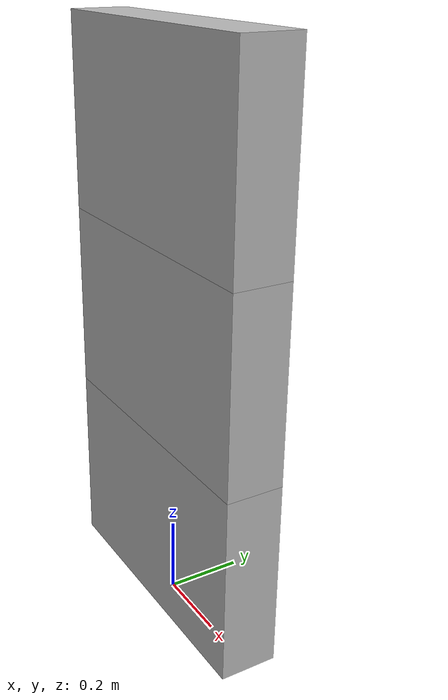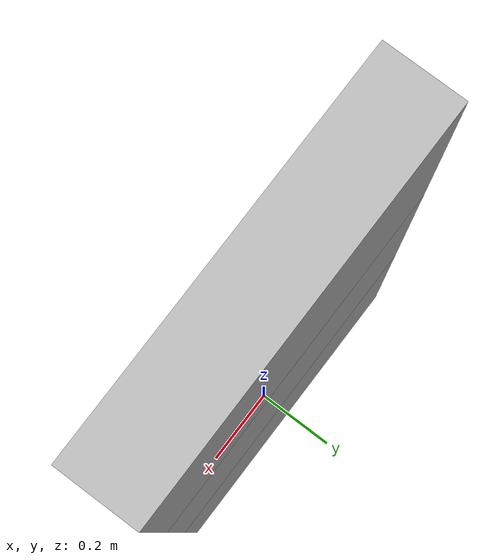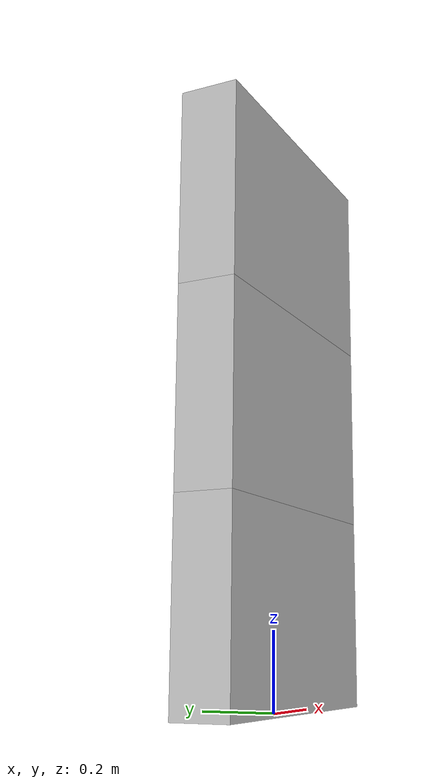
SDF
<?xml version='1_0'?>
<sdf version="1.5">
  <model name="boxes_corridor model">
    <pose>0 0 0 0 0  1.57079633</pose>
    <static>true</static>
    <!-- 1st row -->
    <link name="link_0">
      <collision name="collision_0">
        <pose>0 0 0.75 0 0 1.57079633</pose>
        <geometry>
          <box>
            <size>0.75 0.15 0.5</size>
          </box>
        </geometry>
      </collision>
      <visual name='visual_0'>
        <pose>0 0 0.75 0 0 1.57079633</pose>
        <geometry>
            <mesh>
              <uri>model://boxes_corridor/meshes/blue_circle_border.dae</uri>
            </mesh>
        </geometry>
      </visual>
    </link>

    <link name="link_1">
      <collision name="collision_1">
        <pose>0 0 0.25 0 0 1.57079633</pose>
        <geometry>
          <box>
            <size>0.75 0.15 0.5</size>
          </box>
        </geometry>
      </collision>
      <visual name='visual_1'>
        <pose>0 0 0.25 0 0 1.57079633</pose>
        <geometry>
            <mesh>
              <uri>model://boxes_corridor/meshes/red_circle_border.dae</uri>
            </mesh>
        </geometry>
      </visual>
    </link>

    <link name="link_2">
      <collision name="collision_2">
        <pose>0 0 1.25 0 0 1.57079633</pose>
        <geometry>
          <box>
            <size>0.75 0.15 0.5</size>
          </box>
        </geometry>
      </collision>
      <visual name='visual_2'>
        <pose>0 0 1.25 0 0 1.57079633</pose>
        <geometry>
            <mesh>
              <uri>model://boxes_1/meshes/green_circle_border.dae</uri>
            </mesh>
        </geometry>
      </visual>
    </link>
  </model>
</sdf>
